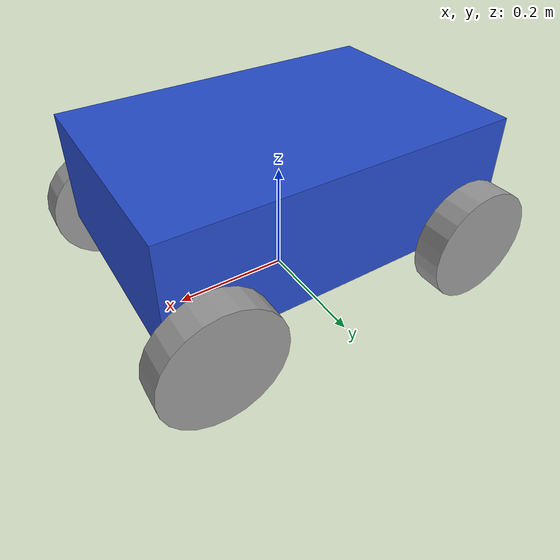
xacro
<?xml version="1.0"?>
<robot xmlns:xacro="http://www.ros.org/wiki/xacro">

    <!-- Properties -->
    <xacro:property name="base_length" value="0.6" />
    <xacro:property name="base_width" value="0.4" />
    <xacro:property name="base_height" value="0.2" />
    <xacro:property name="wheel_radius" value="0.1" />
    <xacro:property name="wheel_length" value="0.05" />

    <!-- Base footprint -->
    <link name="base_footprint" />

    <!-- Base link -->
    <link name="base_link">
        <visual>
            <geometry>
                <box size="${base_length} ${base_width} ${base_height}" />
            </geometry>
            <origin xyz="0 0 ${base_height / 2.0}" rpy="0 0 0" />
            <material name="blue" />
        </visual>
        <collision>
            <geometry>
                <box size="${base_length} ${base_width} ${base_height}" />
            </geometry>
            <origin xyz="0 0 ${base_height / 2.0}" rpy="0 0 0" />
        </collision>
        <xacro:box_inertia m="5.0" l="${2*base_length}" w="${2*base_width}" h="${2*base_height}"
                           xyz="0 0 ${base_height / 2.0}" rpy="0 0 0" />
    </link>

    <!-- Macro for a wheel -->
    <xacro:macro name="wheel_link" params="prefix">
        <link name="${prefix}_wheel_link">
            <visual>
                <geometry>
                    <cylinder radius="${wheel_radius}" length="${wheel_length}" />
                </geometry>
                <origin xyz="0 0 0" rpy="${pi / 2.0} 0 0" />
                <material name="grey" />
            </visual>
            <collision>
                <geometry>
                    <cylinder radius="${wheel_radius}" length="${wheel_length}" />
                </geometry>
                <origin xyz="0 0 0" rpy="${pi / 2.0} 0 0" />
            </collision>
            <xacro:cylinder_inertia m="1.0" r="${2*wheel_radius}" h="${2*wheel_length}"
                                    xyz="0 0 0" rpy="${pi / 2.0} 0 0" />
        </link>
    </xacro:macro>

    <!-- 4 Wheels -->
    <xacro:wheel_link prefix="rear_right" />
    <xacro:wheel_link prefix="rear_left" />
    <xacro:wheel_link prefix="front_right" />
    <xacro:wheel_link prefix="front_left" />

    <!-- Joints -->
    <joint name="base_joint" type="fixed">
        <parent link="base_footprint" />
        <child link="base_link" />
        <origin xyz="0 0 ${wheel_radius}" rpy="0 0 0"/>
    </joint>

    <!-- Front Wheels (controlled directly) -->
    <joint name="base_front_right_wheel_joint" type="continuous">
        <parent link="base_link" />
        <child link="front_right_wheel_link" />
        <origin xyz="${base_length / 2.5} ${-(base_width + wheel_length) / 2.0} 0" rpy="0 0 0" />
        <axis xyz="0 1 0" />
    </joint>

    <joint name="base_front_left_wheel_joint" type="continuous">
        <parent link="base_link" />
        <child link="front_left_wheel_link" />
        <origin xyz="${base_length / 2.5} ${(base_width + wheel_length) / 2.0} 0" rpy="0 0 0" />
        <axis xyz="0 1 0" />
    </joint>

    <!-- Rear Wheels (MIMIC joints) -->
    <joint name="base_rear_right_wheel_joint" type="continuous">
        <parent link="base_link" />
        <child link="rear_right_wheel_link" />
        <origin xyz="${-base_length / 2.5} ${-(base_width + wheel_length) / 2.0} 0" rpy="0 0 0" />
        <axis xyz="0 1 0" />
        <mimic joint="base_front_right_wheel_joint" multiplier="1.0" />
    </joint>

    <joint name="base_rear_left_wheel_joint" type="continuous">
        <parent link="base_link" />
        <child link="rear_left_wheel_link" />
        <origin xyz="${-base_length / 2.5} ${(base_width + wheel_length) / 2.0} 0" rpy="0 0 0" />
        <axis xyz="0 1 0" />
        <mimic joint="base_front_left_wheel_joint" multiplier="1.0" />
    </joint>

</robot>
